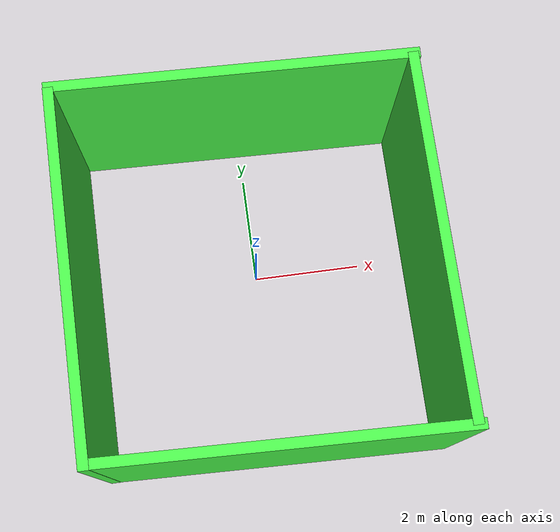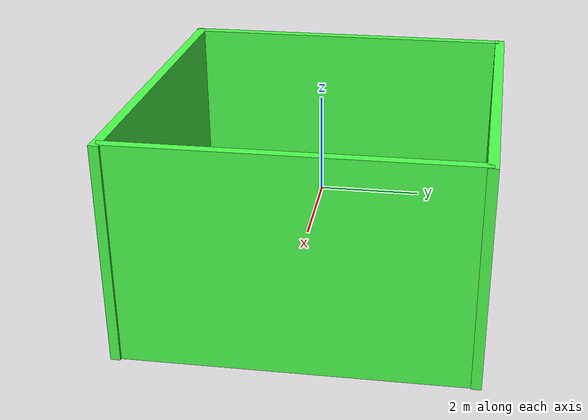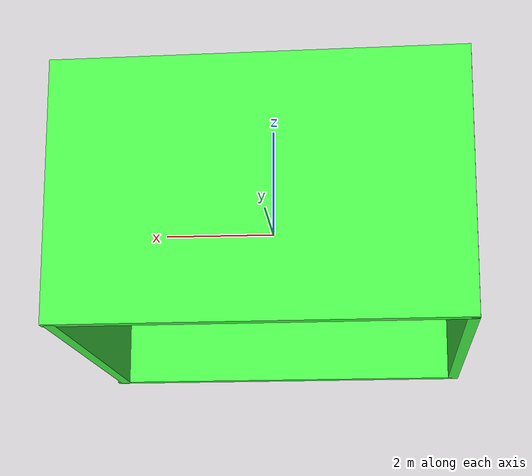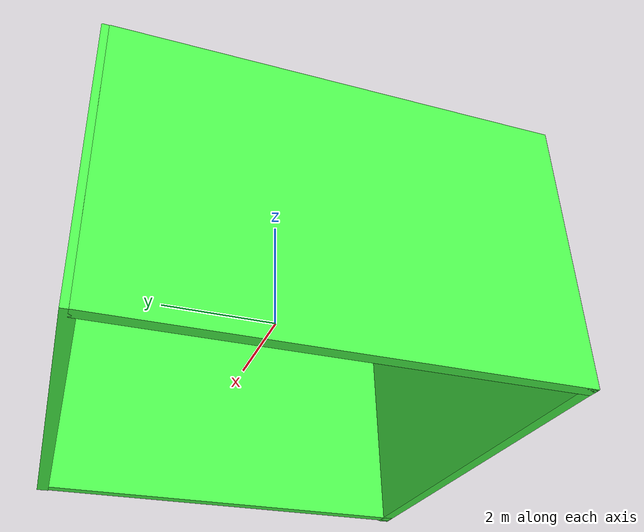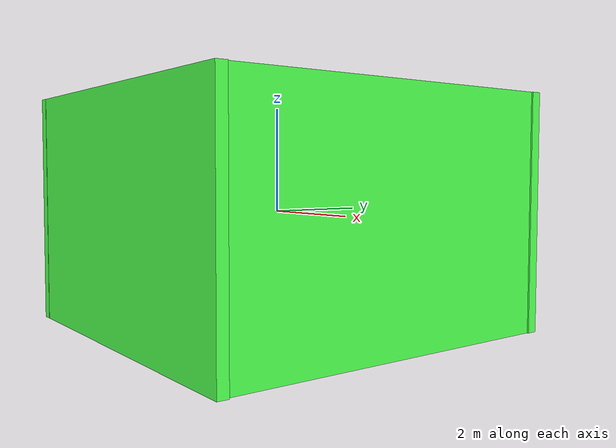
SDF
<?xml version='1.0'?>
<sdf version='1.6'>
  <model name='closed_green_wall'>
    <link name='link_0'>
      <inertial>
        <mass>1</mass>
        <inertia>
          <ixx>0.166667</ixx>
          <ixy>0</ixy>
          <ixz>0</ixz>
          <iyy>0.166667</iyy>
          <iyz>0</iyz>
          <izz>0.166667</izz>
        </inertia>
        <pose frame=''>0 0 0 0 -0 0</pose>
      </inertial>
      <pose frame=''>3.37098 -0.107634 -0 0 -0 0</pose>
      <gravity>1</gravity>
      <self_collide>0</self_collide>
      <kinematic>0</kinematic>
      <enable_wind>0</enable_wind>
      <visual name='visual'>
        <pose frame=''>0 0 0 0 -0 0</pose>
        <geometry>
          <box>
            <size>0.2 7 4.5</size>
          </box>
        </geometry>
        <material>
          <lighting>1</lighting>
          <script>
            <uri>file://media/materials/scripts/gazebo.material</uri>
            <name>Gazebo/Grey</name>
          </script>
          <shader type='vertex'>
            <normal_map>__default__</normal_map>
          </shader>
          <ambient>0.3 1.0 0.3 1</ambient>
          <diffuse>0.7 0.7 0.7 1</diffuse>
          <specular>0.01 0.01 0.01 1</specular>
          <emissive>0 0 0 1</emissive>
        </material>
        <transparency>0</transparency>
        <cast_shadows>1</cast_shadows>
      </visual>
      <collision name='collision'>
        <laser_retro>0</laser_retro>
        <max_contacts>10</max_contacts>
        <pose frame=''>0 0 0 0 -0 0</pose>
        <geometry>
          <box>
            <size>0.2 7 4.5</size>
          </box>
        </geometry>
        <surface>
          <friction>
            <ode>
              <mu>1</mu>
              <mu2>1</mu2>
              <fdir1>0 0 0</fdir1>
              <slip1>0</slip1>
              <slip2>0</slip2>
            </ode>
            <torsional>
              <coefficient>1</coefficient>
              <patch_radius>0</patch_radius>
              <surface_radius>0</surface_radius>
              <use_patch_radius>1</use_patch_radius>
              <ode>
                <slip>0</slip>
              </ode>
            </torsional>
          </friction>
          <bounce>
            <restitution_coefficient>0</restitution_coefficient>
            <threshold>1e+06</threshold>
          </bounce>
          <contact>
            <collide_without_contact>0</collide_without_contact>
            <collide_without_contact_bitmask>1</collide_without_contact_bitmask>
            <collide_bitmask>1</collide_bitmask>
            <ode>
              <soft_cfm>0</soft_cfm>
              <soft_erp>0.2</soft_erp>
              <kp>1e+13</kp>
              <kd>1</kd>
              <max_vel>0.01</max_vel>
              <min_depth>0</min_depth>
            </ode>
            <bullet>
              <split_impulse>1</split_impulse>
              <split_impulse_penetration_threshold>-0.01</split_impulse_penetration_threshold>
              <soft_cfm>0</soft_cfm>
              <soft_erp>0.2</soft_erp>
              <kp>1e+13</kp>
              <kd>1</kd>
            </bullet>
          </contact>
        </surface>
      </collision>
    </link>
    <link name='link_0_clone'>
      <inertial>
        <mass>1</mass>
        <inertia>
          <ixx>0.166667</ixx>
          <ixy>0</ixy>
          <ixz>0</ixz>
          <iyy>0.166667</iyy>
          <iyz>0</iyz>
          <izz>0.166667</izz>
        </inertia>
        <pose frame=''>0 0 0 0 -0 0</pose>
      </inertial>
      <pose frame=''>0.024232 -3.42805 -0 0 0 -1.59986</pose>
      <gravity>1</gravity>
      <self_collide>0</self_collide>
      <kinematic>0</kinematic>
      <enable_wind>0</enable_wind>
      <visual name='visual'>
        <pose frame=''>0 0 0 0 -0 0</pose>
        <geometry>
          <box>
            <size>0.2 7 4.5</size>
          </box>
        </geometry>
        <material>
          <lighting>1</lighting>
          <script>
            <uri>file://media/materials/scripts/gazebo.material</uri>
            <name>Gazebo/Grey</name>
          </script>
          <shader type='vertex'>
            <normal_map>__default__</normal_map>
          </shader>
          <ambient>0.3 1.0 0.3 1</ambient>
          <diffuse>0.7 0.7 0.7 1</diffuse>
          <specular>0.01 0.01 0.01 1</specular>
          <emissive>0 0 0 1</emissive>
        </material>
        <transparency>0</transparency>
        <cast_shadows>1</cast_shadows>
      </visual>
      <collision name='collision'>
        <laser_retro>0</laser_retro>
        <max_contacts>10</max_contacts>
        <pose frame=''>0 0 0 0 -0 0</pose>
        <geometry>
          <box>
            <size>0.2 7 4.5</size>
          </box>
        </geometry>
        <surface>
          <friction>
            <ode>
              <mu>1</mu>
              <mu2>1</mu2>
              <fdir1>0 0 0</fdir1>
              <slip1>0</slip1>
              <slip2>0</slip2>
            </ode>
            <torsional>
              <coefficient>1</coefficient>
              <patch_radius>0</patch_radius>
              <surface_radius>0</surface_radius>
              <use_patch_radius>1</use_patch_radius>
              <ode>
                <slip>0</slip>
              </ode>
            </torsional>
          </friction>
          <bounce>
            <restitution_coefficient>0</restitution_coefficient>
            <threshold>1e+06</threshold>
          </bounce>
          <contact>
            <collide_without_contact>0</collide_without_contact>
            <collide_without_contact_bitmask>1</collide_without_contact_bitmask>
            <collide_bitmask>1</collide_bitmask>
            <ode>
              <soft_cfm>0</soft_cfm>
              <soft_erp>0.2</soft_erp>
              <kp>1e+13</kp>
              <kd>1</kd>
              <max_vel>0.01</max_vel>
              <min_depth>0</min_depth>
            </ode>
            <bullet>
              <split_impulse>1</split_impulse>
              <split_impulse_penetration_threshold>-0.01</split_impulse_penetration_threshold>
              <soft_cfm>0</soft_cfm>
              <soft_erp>0.2</soft_erp>
              <kp>1e+13</kp>
              <kd>1</kd>
            </bullet>
          </contact>
        </surface>
      </collision>
    </link>
    <link name='link_0_clone_0'>
      <inertial>
        <mass>1</mass>
        <inertia>
          <ixx>0.166667</ixx>
          <ixy>0</ixy>
          <ixz>0</ixz>
          <iyy>0.166667</iyy>
          <iyz>0</iyz>
          <izz>0.166667</izz>
        </inertia>
        <pose frame=''>0 0 0 0 -0 0</pose>
      </inertial>
      <pose frame=''>-3.40001 0.065208 -0 0 -0 0</pose>
      <gravity>1</gravity>
      <self_collide>0</self_collide>
      <kinematic>0</kinematic>
      <enable_wind>0</enable_wind>
      <visual name='visual'>
        <pose frame=''>0 0 0 0 -0 0</pose>
        <geometry>
          <box>
            <size>0.2 7 4.5</size>
          </box>
        </geometry>
        <material>
          <lighting>1</lighting>
          <script>
            <uri>file://media/materials/scripts/gazebo.material</uri>
            <name>Gazebo/Grey</name>
          </script>
          <shader type='vertex'>
            <normal_map>__default__</normal_map>
          </shader>
          <ambient>0.3 1.0 0.3 1</ambient>
          <diffuse>0.7 0.7 0.7 1</diffuse>
          <specular>0.01 0.01 0.01 1</specular>
          <emissive>0 0 0 1</emissive>
        </material>
        <transparency>0</transparency>
        <cast_shadows>1</cast_shadows>
      </visual>
      <collision name='collision'>
        <laser_retro>0</laser_retro>
        <max_contacts>10</max_contacts>
        <pose frame=''>0 0 0 0 -0 0</pose>
        <geometry>
          <box>
            <size>0.2 7 4.5</size>
          </box>
        </geometry>
        <surface>
          <friction>
            <ode>
              <mu>1</mu>
              <mu2>1</mu2>
              <fdir1>0 0 0</fdir1>
              <slip1>0</slip1>
              <slip2>0</slip2>
            </ode>
            <torsional>
              <coefficient>1</coefficient>
              <patch_radius>0</patch_radius>
              <surface_radius>0</surface_radius>
              <use_patch_radius>1</use_patch_radius>
              <ode>
                <slip>0</slip>
              </ode>
            </torsional>
          </friction>
          <bounce>
            <restitution_coefficient>0</restitution_coefficient>
            <threshold>1e+06</threshold>
          </bounce>
          <contact>
            <collide_without_contact>0</collide_without_contact>
            <collide_without_contact_bitmask>1</collide_without_contact_bitmask>
            <collide_bitmask>1</collide_bitmask>
            <ode>
              <soft_cfm>0</soft_cfm>
              <soft_erp>0.2</soft_erp>
              <kp>1e+13</kp>
              <kd>1</kd>
              <max_vel>0.01</max_vel>
              <min_depth>0</min_depth>
            </ode>
            <bullet>
              <split_impulse>1</split_impulse>
              <split_impulse_penetration_threshold>-0.01</split_impulse_penetration_threshold>
              <soft_cfm>0</soft_cfm>
              <soft_erp>0.2</soft_erp>
              <kp>1e+13</kp>
              <kd>1</kd>
            </bullet>
          </contact>
        </surface>
      </collision>
    </link>
    <link name='link_0_clone_clone'>
      <inertial>
        <mass>1</mass>
        <inertia>
          <ixx>0.166667</ixx>
          <ixy>0</ixy>
          <ixz>0</ixz>
          <iyy>0.166667</iyy>
          <iyz>0</iyz>
          <izz>0.166667</izz>
        </inertia>
        <pose frame=''>0 0 0 0 -0 0</pose>
      </inertial>
      <pose frame=''>0.004806 3.47046 -0 0 0 -1.59986</pose>
      <gravity>1</gravity>
      <self_collide>0</self_collide>
      <kinematic>0</kinematic>
      <enable_wind>0</enable_wind>
      <visual name='visual'>
        <pose frame=''>0 0 0 0 -0 0</pose>
        <geometry>
          <box>
            <size>0.2 7 4.5</size>
          </box>
        </geometry>
        <material>
          <lighting>1</lighting>
          <script>
            <uri>file://media/materials/scripts/gazebo.material</uri>
            <name>Gazebo/Grey</name>
          </script>
          <shader type='vertex'>
            <normal_map>__default__</normal_map>
          </shader>
          <ambient>0.3 1.0 0.3 1</ambient>
          <diffuse>0.7 0.7 0.7 1</diffuse>
          <specular>0.01 0.01 0.01 1</specular>
          <emissive>0 0 0 1</emissive>
        </material>
        <transparency>0</transparency>
        <cast_shadows>1</cast_shadows>
      </visual>
      <collision name='collision'>
        <laser_retro>0</laser_retro>
        <max_contacts>10</max_contacts>
        <pose frame=''>0 0 0 0 -0 0</pose>
        <geometry>
          <box>
            <size>0.2 7 4.5</size>
          </box>
        </geometry>
        <surface>
          <friction>
            <ode>
              <mu>1</mu>
              <mu2>1</mu2>
              <fdir1>0 0 0</fdir1>
              <slip1>0</slip1>
              <slip2>0</slip2>
            </ode>
            <torsional>
              <coefficient>1</coefficient>
              <patch_radius>0</patch_radius>
              <surface_radius>0</surface_radius>
              <use_patch_radius>1</use_patch_radius>
              <ode>
                <slip>0</slip>
              </ode>
            </torsional>
          </friction>
          <bounce>
            <restitution_coefficient>0</restitution_coefficient>
            <threshold>1e+06</threshold>
          </bounce>
          <contact>
            <collide_without_contact>0</collide_without_contact>
            <collide_without_contact_bitmask>1</collide_without_contact_bitmask>
            <collide_bitmask>1</collide_bitmask>
            <ode>
              <soft_cfm>0</soft_cfm>
              <soft_erp>0.2</soft_erp>
              <kp>1e+13</kp>
              <kd>1</kd>
              <max_vel>0.01</max_vel>
              <min_depth>0</min_depth>
            </ode>
            <bullet>
              <split_impulse>1</split_impulse>
              <split_impulse_penetration_threshold>-0.01</split_impulse_penetration_threshold>
              <soft_cfm>0</soft_cfm>
              <soft_erp>0.2</soft_erp>
              <kp>1e+13</kp>
              <kd>1</kd>
            </bullet>
          </contact>
        </surface>
      </collision>
    </link>
    <joint name='link_0_JOINT_1' type='fixed'>
      <parent>link_0</parent>
      <child>link_0_clone_clone</child>
      <pose frame=''>0 0 0 0 -0 0</pose>
      <physics>
        <ode>
          <limit>
            <cfm>0</cfm>
            <erp>0.2</erp>
          </limit>
          <suspension>
            <cfm>0</cfm>
            <erp>0.2</erp>
          </suspension>
        </ode>
      </physics>
    </joint>
    <joint name='link_0_clone_0_JOINT_3' type='fixed'>
      <parent>link_0_clone_0</parent>
      <child>link_0_clone</child>
      <pose frame=''>0 0 0 0 -0 0</pose>
      <physics>
        <ode>
          <limit>
            <cfm>0</cfm>
            <erp>0.2</erp>
          </limit>
          <suspension>
            <cfm>0</cfm>
            <erp>0.2</erp>
          </suspension>
        </ode>
      </physics>
    </joint>
    <joint name='link_0_clone_JOINT_0' type='fixed'>
      <parent>link_0_clone</parent>
      <child>link_0</child>
      <pose frame=''>0 0 0 0 -0 0</pose>
      <physics>
        <ode>
          <limit>
            <cfm>0</cfm>
            <erp>0.2</erp>
          </limit>
          <suspension>
            <cfm>0</cfm>
            <erp>0.2</erp>
          </suspension>
        </ode>
      </physics>
    </joint>
    <joint name='link_0_clone_clone_JOINT_2' type='fixed'>
      <parent>link_0_clone_clone</parent>
      <child>link_0_clone_0</child>
      <pose frame=''>0 0 0 0 -0 0</pose>
      <physics>
        <ode>
          <limit>
            <cfm>0</cfm>
            <erp>0.2</erp>
          </limit>
          <suspension>
            <cfm>0</cfm>
            <erp>0.2</erp>
          </suspension>
        </ode>
      </physics>
    </joint>
    <static>0</static>
    <allow_auto_disable>1</allow_auto_disable>
  </model>
</sdf>
